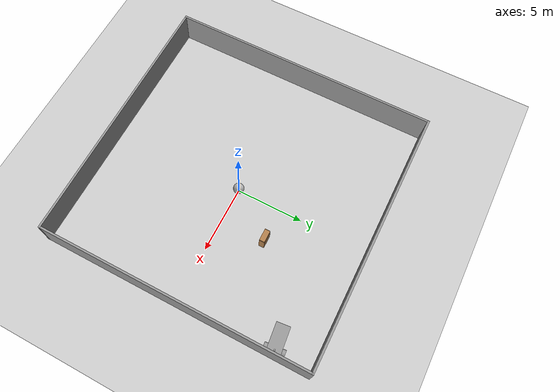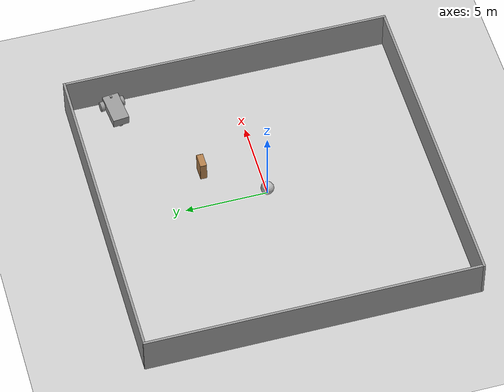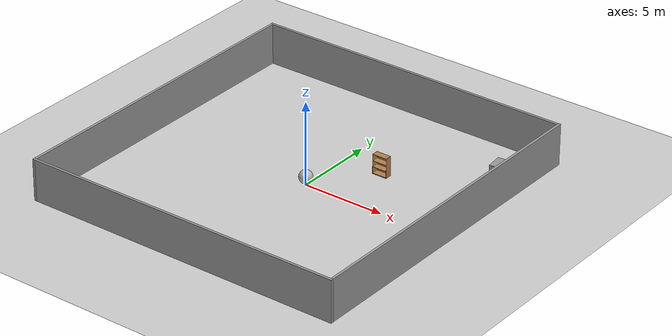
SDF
<sdf version="1.6">
 <world name="default">
  <light name="sun" type="directional">
   <pose>0 0 10 0 -0 0</pose>
   <diffuse>0.8 0.8 0.8 1</diffuse>
   <specular>0.2 0.2 0.2 1</specular>
   <attenuation>
    <range>1000</range>
    <constant>0.9</constant>
    <linear>0.01</linear>
    <quadratic>0.001</quadratic>
   </attenuation>
   <direction>-0.5 0.1 -0.9</direction>
  </light>
  <model name="animated_ball">
   <pose>0 0 0.5 0 0 0</pose>
   <link name="link">
    <collision name="animated_ball_collision">
     <geometry><sphere><radius>0.2</radius></sphere></geometry>
    </collision>
    <visual name="visual"><geometry><sphere><radius>0.2</radius></sphere></geometry></visual>
    <inertial>
     <inertia><ixx>1</ixx><ixy>0</ixy><ixz>0</ixz><iyy>1</iyy><iyz>0</iyz><izz>1</izz></inertia>
     <mass>1</mass>
    </inertial>
    <gravity>0</gravity>
   </link>
   <plugin name="push_animate" filename="libbox_clockwise_movement.so"/>
  </model>
  <model name="animated_box">
   <pose>0 0 0.5 0 0 0</pose>
   <link name="link">
    <collision name="animated_box_collision"><geometry><box><size>0.2 0.2 0.2</size></box></geometry></collision>
    <visual name="visual"><geometry><box><size>0.2 0.2 0.2</size></box></geometry></visual>
    <inertial>
     <inertia><ixx>1</ixx><ixy>0</ixy><ixz>0</ixz><iyy>1</iyy><iyz>0</iyz><izz>1</izz></inertia>
     <mass>1</mass>
    </inertial>
    <gravity>0</gravity>
   </link>
   <plugin name="push_animate2" filename="libbox_clockwise_movement2.so"/>
  </model>
  <model name="animated_ball2">
   <pose>0 0 0.5 0 0 0</pose>
   <link name="link">
    <collision name="animated_ball_collision2">
     <geometry><sphere><radius>0.3</radius></sphere></geometry>
    </collision>
    <visual name="visual"><geometry><sphere><radius>0.3</radius></sphere></geometry></visual>
    <inertial>
     <inertia><ixx>1</ixx><ixy>0</ixy><ixz>0</ixz><iyy>1</iyy><iyz>0</iyz><izz>1</izz></inertia>
     <mass>1</mass>
    </inertial>
    <gravity>0</gravity>
   </link>
   <plugin name="push_animate3" filename="libbox_forward_movement15.so"/>
  </model>
  <model name="animated_ball3">
   <pose>0 0 0.5 0 0 0</pose>
   <link name="link">
    <collision name="animated_ball_collision3">
     <geometry><sphere><radius>0.4</radius></sphere></geometry>
    </collision>
    <visual name="visual"><geometry><sphere><radius>0.4</radius></sphere></geometry></visual>
    <inertial>
     <inertia><ixx>1</ixx><ixy>0</ixy><ixz>0</ixz><iyy>1</iyy><iyz>0</iyz><izz>1</izz></inertia>
     <mass>1</mass>
    </inertial>
    <gravity>0</gravity>
   </link>
   <plugin name="push_animate4" filename="libbox_clockwise_movement4.so"/>
  </model>
  <model name="ground_plane">
   <static>1</static>
   <link name="link">
    <collision name="collision">
     <geometry><plane><normal>0 0 1</normal><size>100 100</size></plane></geometry>
     <surface><friction><ode><mu>100</mu><mu2>50</mu2></ode></friction></surface>
    </collision>
    <visual name="visual">
     <cast_shadows>0</cast_shadows>
     <geometry><plane><normal>0 0 1</normal><size>100 100</size></plane></geometry>
     <material>
      <script><uri>file://media/materials/scripts/gazebo.material</uri><name>Gazebo/Grey</name></script>
     </material>
    </visual>
   </link>
  </model>
  <gravity>0 0 -9.8</gravity>
  <magnetic_field>6e-06 2.3e-05 -4.2e-05</magnetic_field>
  <atmosphere type="adiabatic"/>
  <physics name="default_physics" default="0" type="ode">
   <max_step_size>0.001</max_step_size>
   <real_time_factor>1</real_time_factor>
   <real_time_update_rate>1000</real_time_update_rate>
  </physics>
  <scene><ambient>0.4 0.4 0.4 1</ambient><background>0.7 0.7 0.7 1</background><shadows>1</shadows></scene>
  <audio><device>default</device></audio>
  <spherical_coordinates>
   <surface_model>EARTH_WGS84</surface_model>
   <latitude_deg>0</latitude_deg>
   <longitude_deg>0</longitude_deg>
   <elevation>0</elevation>
   <heading_deg>0</heading_deg>
  </spherical_coordinates>
  <model name="room">
   <pose>-0.42884 0.002677 0 0 -0 0</pose>
   <link name="Wall_0">
    <collision name="Wall_0_Collision">
     <geometry><box><size>19.75 0.15 2.5</size></box></geometry>
     <pose>0 0 1.25 0 -0 0</pose>
    </collision>
    <visual name="Wall_0_Visual">
     <pose>0 0 1.25 0 -0 0</pose>
     <geometry><box><size>19.75 0.15 2.5</size></box></geometry>
     <material>
      <script><uri>file://media/materials/scripts/gazebo.material</uri><name>Gazebo/Grey</name></script>
      <ambient>1 1 1 1</ambient>
     </material>
     <meta><layer>0</layer></meta>
    </visual>
    <pose>-0 -10.05 0 0 -0 3.14159</pose>
   </link>
   <link name="Wall_2">
    <collision name="Wall_2_Collision">
     <geometry><box><size>20.25 0.15 2.5</size></box></geometry>
     <pose>0 0 1.25 0 -0 0</pose>
    </collision>
    <visual name="Wall_2_Visual">
     <pose>0 0 1.25 0 -0 0</pose>
     <geometry><box><size>20.25 0.15 2.5</size></box></geometry>
     <material>
      <script><uri>file://media/materials/scripts/gazebo.material</uri><name>Gazebo/Grey</name></script>
      <ambient>1 1 1 1</ambient>
     </material>
     <meta><layer>0</layer></meta>
    </visual>
    <pose>-9.8 0 0 0 -0 1.5708</pose>
   </link>
   <link name="Wall_3">
    <collision name="Wall_3_Collision">
     <geometry><box><size>19.75 0.15 2.5</size></box></geometry>
     <pose>0 0 1.25 0 -0 0</pose>
    </collision>
    <visual name="Wall_3_Visual">
     <pose>0 0 1.25 0 -0 0</pose>
     <geometry><box><size>19.75 0.15 2.5</size></box></geometry>
     <material>
      <script><uri>file://media/materials/scripts/gazebo.material</uri><name>Gazebo/Grey</name></script>
      <ambient>1 1 1 1</ambient>
     </material>
     <meta><layer>0</layer></meta>
    </visual>
    <pose>-0 10.05 0 0 -0 0</pose>
   </link>
   <link name="Wall_4">
    <collision name="Wall_4_Collision">
     <geometry><box><size>20.25 0.15 2.5</size></box></geometry>
     <pose>0 0 1.25 0 -0 0</pose>
    </collision>
    <visual name="Wall_4_Visual">
     <pose>0 0 1.25 0 -0 0</pose>
     <geometry><box><size>20.25 0.15 2.5</size></box></geometry>
     <material>
      <script><uri>file://media/materials/scripts/gazebo.material</uri><name>Gazebo/Grey</name></script>
      <ambient>1 1 1 1</ambient>
     </material>
     <meta><layer>0</layer></meta>
    </visual>
    <pose>9.8 0 0 0 -0 -1.5708</pose>
   </link>
   <static>1</static>
  </model>
  <model name="follower_vehicle">
   <pose>8.36051 7.25665 0.325006 0 -1.1e-05 0.103891</pose>
   <link name="chassis">
    <pose>-0.151427 -0 0.175 0 -0 0</pose>
    <inertial>
     <mass>1.14395</mass>
     <inertia>
      <ixx>0.126164</ixx>
      <ixy>0</ixy>
      <ixz>0</ixz>
      <iyy>0.416519</iyy>
      <iyz>0</iyz>
      <izz>0.481014</izz>
     </inertia>
    </inertial>
    <visual name="visual">
     <geometry><box><size>2.01142 1 0.568726</size></box></geometry>
     <material>
      <script><uri>file://media/materials/scripts/gazebo.material</uri><name>Gazebo/Grey</name></script>
     </material>
    </visual>
    <collision name="collision">
     <geometry><box><size>2.01142 1 0.568726</size></box></geometry>
     <surface>
      <friction><ode><mu>1</mu><mu2>1</mu2><fdir1>0 0 0</fdir1><slip1>0</slip1><slip2>0</slip2></ode></friction>
      <bounce><restitution_coefficient>0</restitution_coefficient><threshold>1e+06</threshold></bounce>
      <contact>
       <collide_without_contact>0</collide_without_contact>
       <collide_without_contact_bitmask>1</collide_without_contact_bitmask>
       <collide_bitmask>1</collide_bitmask>
       <ode>
        <soft_cfm>0</soft_cfm>
        <soft_erp>0.2</soft_erp>
        <kp>1e+13</kp>
        <kd>1</kd>
        <max_vel>0.01</max_vel>
        <min_depth>0</min_depth>
       </ode>
      </contact>
     </surface>
    </collision>
   </link>
   <link name="wheel_1">
    <pose>0.554283 0.625029 -0.025 1.5707 -0 0</pose>
    <inertial>
     <mass>2</mass>
     <inertia><ixx>0.145833</ixx><ixy>0</ixy><ixz>0</ixz><iyy>0.145833</iyy><iyz>0</iyz><izz>0.125</izz></inertia>
    </inertial>
    <visual name="visual">
     <geometry><cylinder><radius>0.3</radius><length>0.25</length></cylinder></geometry>
     <material>
      <script><uri>file://media/materials/scripts/gazebo.material</uri><name>Gazebo/Grey</name></script>
     </material>
    </visual>
    <collision name="collision">
     <geometry><cylinder><radius>0.3</radius><length>0.25</length></cylinder></geometry>
     <surface>
      <friction><ode><mu>1</mu><mu2>1</mu2><fdir1>0 0 0</fdir1><slip1>0</slip1><slip2>0</slip2></ode></friction>
      <bounce><restitution_coefficient>0</restitution_coefficient><threshold>1e+06</threshold></bounce>
      <contact>
       <collide_without_contact>0</collide_without_contact>
       <collide_without_contact_bitmask>1</collide_without_contact_bitmask>
       <collide_bitmask>1</collide_bitmask>
       <ode>
        <soft_cfm>0</soft_cfm>
        <soft_erp>0.2</soft_erp>
        <kp>1e+13</kp>
        <kd>1</kd>
        <max_vel>0.01</max_vel>
        <min_depth>0</min_depth>
       </ode>
      </contact>
     </surface>
    </collision>
   </link>
   <link name="wheel_2">
    <pose>0.554282 -0.625029 -0.025 1.5707 -0 0</pose>
    <inertial>
     <mass>2</mass>
     <inertia><ixx>0.145833</ixx><ixy>0</ixy><ixz>0</ixz><iyy>0.145833</iyy><iyz>0</iyz><izz>0.125</izz></inertia>
    </inertial>
    <visual name="visual">
     <geometry><cylinder><radius>0.3</radius><length>0.25</length></cylinder></geometry>
     <material>
      <script><uri>file://media/materials/scripts/gazebo.material</uri><name>Gazebo/Grey</name></script>
     </material>
    </visual>
    <collision name="collision">
     <geometry><cylinder><radius>0.3</radius><length>0.25</length></cylinder></geometry>
     <surface>
      <friction><ode><mu>1</mu><mu2>1</mu2><fdir1>0 0 0</fdir1><slip1>0</slip1><slip2>0</slip2></ode></friction>
      <bounce><restitution_coefficient>0</restitution_coefficient><threshold>1e+06</threshold></bounce>
      <contact>
       <collide_without_contact>0</collide_without_contact>
       <collide_without_contact_bitmask>1</collide_without_contact_bitmask>
       <collide_bitmask>1</collide_bitmask>
       <ode>
        <soft_cfm>0</soft_cfm>
        <soft_erp>0.2</soft_erp>
        <kp>1e+13</kp>
        <kd>1</kd>
        <max_vel>0.01</max_vel>
        <min_depth>0</min_depth>
       </ode>
      </contact>
     </surface>
    </collision>
   </link>
   <link name="caster">
    <pose>-0.957138 -0 -0.125 0 -0 0</pose>
    <inertial>
     <mass>1</mass>
     <inertia><ixx>0.1</ixx><ixy>0</ixy><ixz>0</ixz><iyy>0.1</iyy><iyz>0</iyz><izz>0.1</izz></inertia>
    </inertial>
    <visual name="visual">
     <geometry><sphere><radius>0.2</radius></sphere></geometry>
     <material>
      <script><uri>file://media/materials/scripts/gazebo.material</uri><name>Gazebo/Grey</name></script>
     </material>
    </visual>
    <collision name="collision">
     <geometry><sphere><radius>0.2</radius></sphere></geometry>
     <surface>
      <friction><ode><mu>1</mu><mu2>1</mu2><fdir1>0 0 0</fdir1><slip1>0</slip1><slip2>0</slip2></ode></friction>
      <bounce><restitution_coefficient>0</restitution_coefficient><threshold>1e+06</threshold></bounce>
      <contact>
       <collide_without_contact>0</collide_without_contact>
       <collide_without_contact_bitmask>1</collide_without_contact_bitmask>
       <collide_bitmask>1</collide_bitmask>
       <ode>
        <soft_cfm>0</soft_cfm>
        <soft_erp>0.2</soft_erp>
        <kp>1e+13</kp>
        <kd>1</kd>
        <max_vel>0.01</max_vel>
        <min_depth>0</min_depth>
       </ode>
      </contact>
     </surface>
    </collision>
   </link>
   <model name="depth_camera">
    <link name="link">
     <pose>0.05 0.05 0.05 0 -0 0</pose>
     <inertial>
      <mass>0.1</mass>
      <inertia>
       <ixx>0.000166667</ixx>
       <iyy>0.000166667</iyy>
       <izz>0.000166667</izz>
       <ixy>0</ixy>
       <ixz>0</ixz>
       <iyz>0</iyz>
      </inertia>
     </inertial>
     <collision name="collision"><geometry><box><size>0.1 0.1 0.1</size></box></geometry></collision>
     <visual name="visual"><geometry><box><size>0.1 0.1 0.1</size></box></geometry></visual>
     <sensor name="camera" type="depth">
      <camera name="depth">
       <horizontal_fov>1.047</horizontal_fov>
       <image><width>320</width><height>240</height></image>
       <clip><near>0.1</near><far>100</far></clip>
      </camera>
      <always_on>1</always_on>
      <update_rate>30</update_rate>
      <visualize>1</visualize>
     </sensor>
    </link>
    <pose>0.569632 -0.03223 0.502056 0 -0 0</pose>
   </model>
   <joint name="chassis_wheel_1_revolute" type="revolute">
    <parent>chassis</parent>
    <child>wheel_1</child>
    <axis>
     <xyz>0 0 1</xyz>
     <use_parent_model_frame>0</use_parent_model_frame>
     <limit>
      <lower>-1.79769e+308</lower>
      <upper>1.79769e+308</upper>
      <effort>-1</effort>
      <velocity>-1</velocity>
     </limit>
     <dynamics>
      <spring_reference>0</spring_reference>
      <spring_stiffness>0</spring_stiffness>
      <damping>0</damping>
      <friction>0</friction>
     </dynamics>
    </axis>
    <physics>
     <ode><limit><cfm>0</cfm><erp>0.2</erp></limit><suspension><cfm>0</cfm><erp>0.2</erp></suspension></ode>
    </physics>
   </joint>
   <joint name="chassis_wheel_2_revolute" type="revolute">
    <parent>chassis</parent>
    <child>wheel_2</child>
    <axis>
     <xyz>0 0 1</xyz>
     <use_parent_model_frame>0</use_parent_model_frame>
     <limit>
      <lower>-1.79769e+308</lower>
      <upper>1.79769e+308</upper>
      <effort>-1</effort>
      <velocity>-1</velocity>
     </limit>
     <dynamics>
      <spring_reference>0</spring_reference>
      <spring_stiffness>0</spring_stiffness>
      <damping>0</damping>
      <friction>0</friction>
     </dynamics>
    </axis>
    <physics>
     <ode><limit><cfm>0</cfm><erp>0.2</erp></limit><suspension><cfm>0</cfm><erp>0.2</erp></suspension></ode>
    </physics>
   </joint>
   <joint name="chassis_caster_ball" type="ball">
    <parent>chassis</parent>
    <child>caster</child>
    <physics>
     <ode><limit><cfm>0</cfm><erp>0.2</erp></limit><suspension><cfm>0</cfm><erp>0.2</erp></suspension></ode>
    </physics>
   </joint>
   <joint name="chassis_depth_camera_link_fixed" type="fixed">
    <parent>chassis</parent>
    <child>depth_camera::link</child>
    <physics>
     <ode><limit><cfm>0</cfm><erp>0.2</erp></limit><suspension><cfm>0</cfm><erp>0.2</erp></suspension></ode>
    </physics>
   </joint>
   <static>0</static>
   <plugin name="follower" filename="libFollowerPlugin.so"/>
  </model>
  <model name="bookshelf">
   <static>1</static>
   <link name="link">
    <inertial><mass>1</mass></inertial>
    <collision name="back">
     <pose>0 0.005 0.6 0 -0 0</pose>
     <geometry><box><size>0.9 0.01 1.2</size></box></geometry>
    </collision>
    <visual name="visual1">
     <pose>0 0.005 0.6 0 -0 0</pose>
     <geometry><box><size>0.9 0.01 1.2</size></box></geometry>
     <material>
      <script><uri>file://media/materials/scripts/gazebo.material</uri><name>Gazebo/Wood</name></script>
     </material>
    </visual>
    <collision name="left_side">
     <pose>0.45 -0.195 0.6 0 -0 0</pose>
     <geometry><box><size>0.02 0.4 1.2</size></box></geometry>
    </collision>
    <visual name="visual2">
     <pose>0.45 -0.195 0.6 0 -0 0</pose>
     <geometry><box><size>0.02 0.4 1.2</size></box></geometry>
     <material>
      <script><uri>file://media/materials/scripts/gazebo.material</uri><name>Gazebo/Wood</name></script>
     </material>
    </visual>
    <collision name="right_side">
     <pose>-0.45 -0.195 0.6 0 -0 0</pose>
     <geometry><box><size>0.02 0.4 1.2</size></box></geometry>
    </collision>
    <visual name="visual3">
     <pose>-0.45 -0.195 0.6 0 -0 0</pose>
     <geometry><box><size>0.02 0.4 1.2</size></box></geometry>
     <material>
      <script><uri>file://media/materials/scripts/gazebo.material</uri><name>Gazebo/Wood</name></script>
     </material>
    </visual>
    <collision name="bottom">
     <pose>0 -0.195 0.03 0 -0 0</pose>
     <geometry><box><size>0.88 0.4 0.06</size></box></geometry>
    </collision>
    <visual name="visual4">
     <pose>0 -0.195 0.03 0 -0 0</pose>
     <geometry><box><size>0.88 0.4 0.06</size></box></geometry>
     <material>
      <script><uri>file://media/materials/scripts/gazebo.material</uri><name>Gazebo/Wood</name></script>
     </material>
    </visual>
    <collision name="top">
     <pose>0 -0.195 1.19 0 -0 0</pose>
     <geometry><box><size>0.88 0.4 0.02</size></box></geometry>
    </collision>
    <visual name="visual5">
     <pose>0 -0.195 1.19 0 -0 0</pose>
     <geometry><box><size>0.88 0.4 0.02</size></box></geometry>
     <material>
      <script><uri>file://media/materials/scripts/gazebo.material</uri><name>Gazebo/Wood</name></script>
     </material>
    </visual>
    <collision name="low_shelf">
     <pose>0 -0.195 0.43 0 -0 0</pose>
     <geometry><box><size>0.88 0.4 0.02</size></box></geometry>
    </collision>
    <visual name="visual6">
     <pose>0 -0.195 0.43 0 -0 0</pose>
     <geometry><box><size>0.88 0.4 0.02</size></box></geometry>
     <material>
      <script><uri>file://media/materials/scripts/gazebo.material</uri><name>Gazebo/Wood</name></script>
     </material>
    </visual>
    <collision name="high_shelf">
     <pose>0 -0.195 0.8 0 -0 0</pose>
     <geometry><box><size>0.88 0.4 0.02</size></box></geometry>
    </collision>
    <visual name="visual7">
     <pose>0 -0.195 0.8 0 -0 0</pose>
     <geometry><box><size>0.88 0.4 0.02</size></box></geometry>
     <material>
      <script><uri>file://media/materials/scripts/gazebo.material</uri><name>Gazebo/Wood</name></script>
     </material>
    </visual>
   </link>
   <pose>2.52857 3.55543 0 0 -0 0</pose>
  </model>
 </world>
</sdf>
